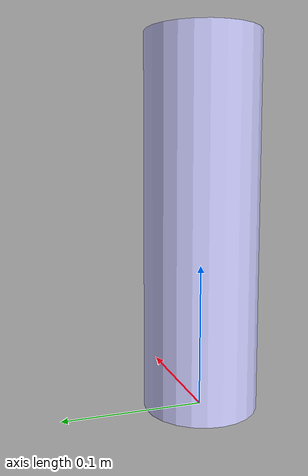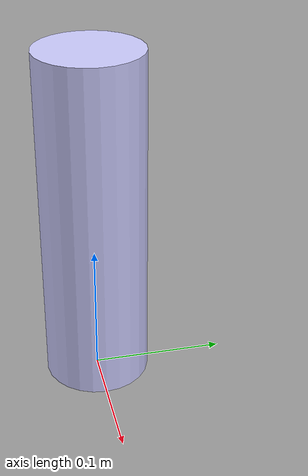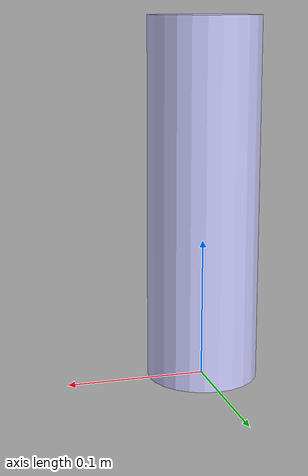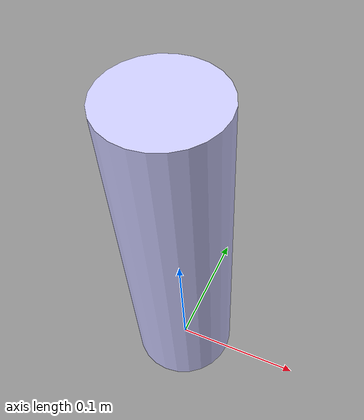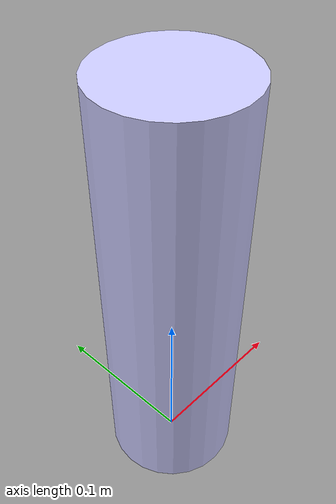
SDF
<sdf version="1.6">
    <model name="bottle">
        <allow_auto_disable>true</allow_auto_disable>
        <link name="link">
            <kinematic>true</kinematic>
            <pose>0 0 0.13 0 0 0 0</pose>
            <visual name="visual">
                <geometry>
                    <cylinder>
                        <radius>0.04</radius>
                        <length>0.26</length>
                    </cylinder>
                </geometry>
                <material>
                <ambient>0.8 0.8 1.0 1.0</ambient>
                <diffuse>0.8 0.8 1.0 1.0</diffuse>
                </material>
            </visual>
            <collision name="collision">
                <geometry>
                    <cylinder>
                        <radius>0.04</radius>
                        <length>0.26</length>
                    </cylinder>
                </geometry>
                <surface>
                    <friction>
                        <ode>
                            <mu>1.0</mu>
                            <mu2>1.0</mu2>
                        </ode>
                    </friction>
                    <contact>
                        <ode>
                            <kp>1e15</kp>
                            <kd>1e12</kd>
                        </ode>
                    </contact>
                </surface>
            </collision>
        </link>
    </model>
</sdf>
